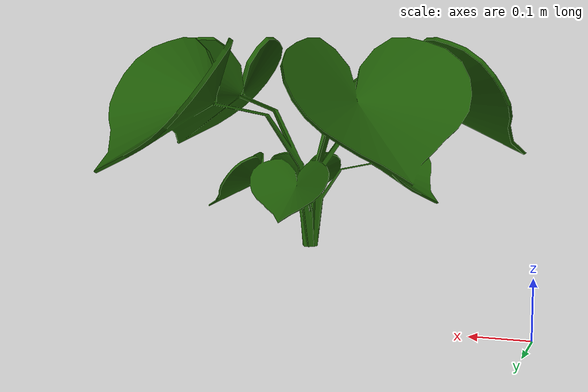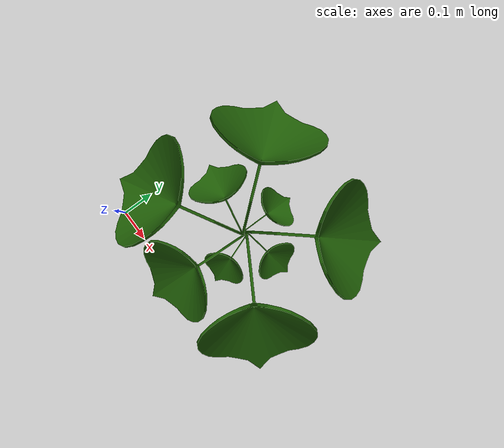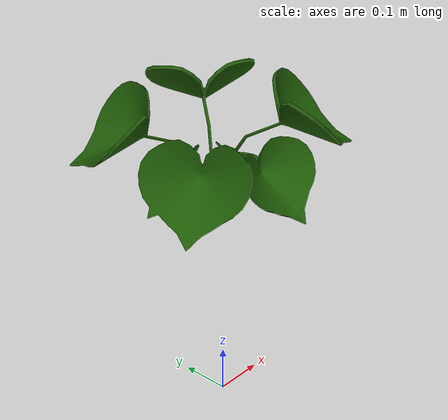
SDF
<?xml version='1.0'?>
<sdf version='1.6'>
  <model name='plant_3'>
    <link name='link_1'>
      <pose frame=''>-0.00034 0 0 0 -0 0</pose>
        <visual name='visual'>
         <geometry>
          <mesh>
		<uri>model://plant_3/meshes/plant.dae</uri>
              <scale>1 1 1</scale>
          </mesh>
        </geometry>
        <material>
          <lighting>1</lighting>
           <ambient>0.109 0.345 0.015 1</ambient>
          <diffuse>0.109 0.345 0.015 1</diffuse>
          <specular>0.01 0.01 0.01 1</specular>
          <emissive>0 0 0 1</emissive>
          <shader type='vertex'>
            <normal_map>__default__</normal_map>
          </shader>
        </material>
        <cast_shadows>1</cast_shadows>
        <transparency>0</transparency>
      </visual>

    <collision name='collision'>
        <laser_retro>0</laser_retro>
        <max_contacts>10</max_contacts>
         <geometry>
          <mesh>
            <uri>model://plant_3/meshes/plant.dae</uri>
            <scale>1 1 1</scale>
          </mesh>
        </geometry>
      </collision>
    </link>
    <static>1</static>
    <allow_auto_disable>1</allow_auto_disable>
  </model>
</sdf>
